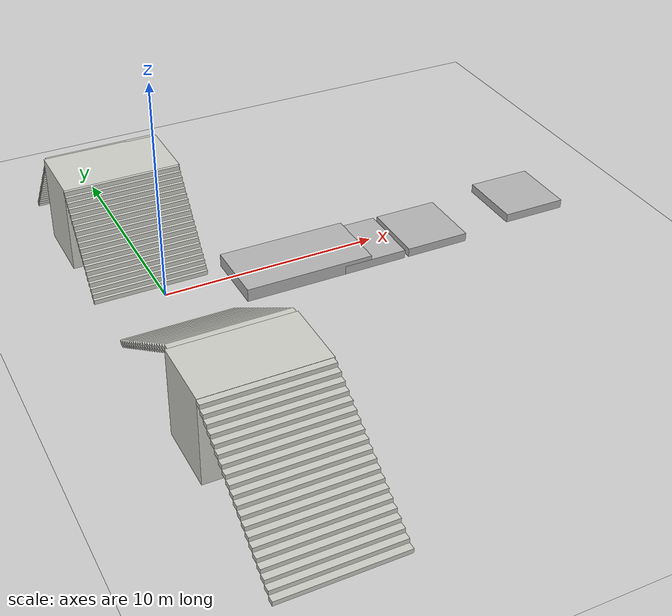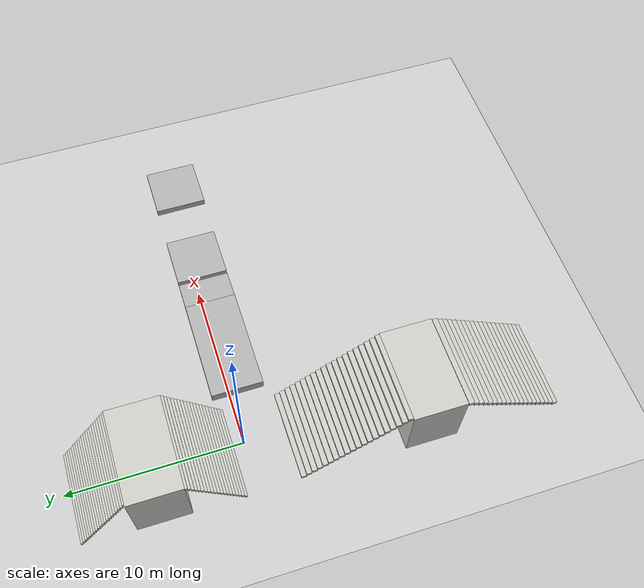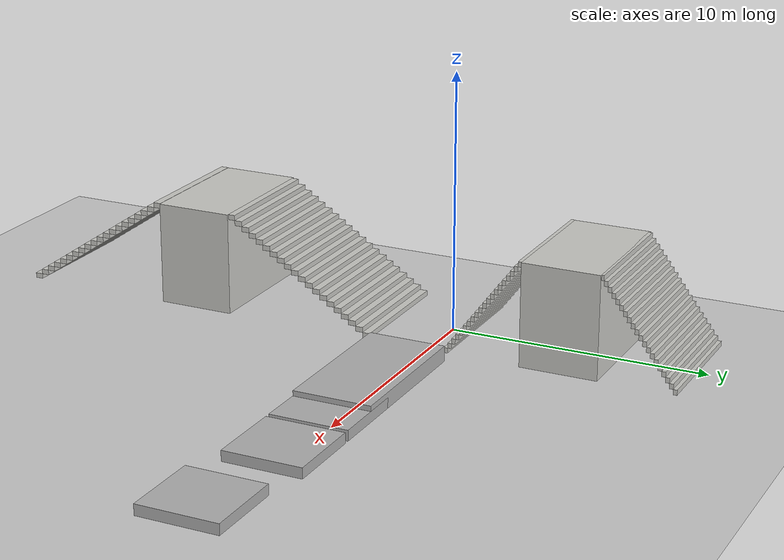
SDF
<sdf version="1.5">
 <world name="stairs_world">
  <include><uri>model://sun</uri></include>
  <include><uri>model://ground_plane</uri></include>
  <model name="stairs_20x30">
   <pose>0 -8 0 0 0 0</pose>
   <link name="Stairs_2">
    <pose>0 2.8 0 0 -0 0</pose>
    <visual name="Stairs_2_Visual_0">
     <pose>-0.312063 2.64146 0.1 0 -0 0</pose>
     <geometry><box><size>5.09 0.3 0.2</size></box></geometry>
     <material>
      <script><uri>file://media/materials/scripts/gazebo.material</uri><name>Gazebo/CeilingTiled</name></script>
      <ambient>0.996078 0.47451 0.0196078 1</ambient>
     </material>
     <meta><layer>0</layer></meta>
    </visual>
    <collision name="Stairs_2_Collision_0">
     <geometry><box><size>5.09 0.3 0.2</size></box></geometry>
     <pose>-0.312063 2.64146 0.1 0 -0 0</pose>
    </collision>
    <visual name="Stairs_2_Visual_1">
     <pose>-0.312063 2.34146 0.3 0 -0 0</pose>
     <geometry><box><size>5.09 0.3 0.2</size></box></geometry>
     <material>
      <script><uri>file://media/materials/scripts/gazebo.material</uri><name>Gazebo/CeilingTiled</name></script>
      <ambient>0.996078 0.47451 0.0196078 1</ambient>
     </material>
     <meta><layer>0</layer></meta>
    </visual>
    <collision name="Stairs_2_Collision_1">
     <geometry><box><size>5.09 0.3 0.2</size></box></geometry>
     <pose>-0.312063 2.34146 0.3 0 -0 0</pose>
    </collision>
    <visual name="Stairs_2_Visual_2">
     <pose>-0.312063 2.04146 0.5 0 -0 0</pose>
     <geometry><box><size>5.09 0.3 0.2</size></box></geometry>
     <material>
      <script><uri>file://media/materials/scripts/gazebo.material</uri><name>Gazebo/CeilingTiled</name></script>
      <ambient>0.996078 0.47451 0.0196078 1</ambient>
     </material>
     <meta><layer>0</layer></meta>
    </visual>
    <collision name="Stairs_2_Collision_2">
     <geometry><box><size>5.09 0.3 0.2</size></box></geometry>
     <pose>-0.312063 2.04146 0.5 0 -0 0</pose>
    </collision>
    <visual name="Stairs_2_Visual_3">
     <pose>-0.312063 1.74146 0.7 0 -0 0</pose>
     <geometry><box><size>5.09 0.3 0.2</size></box></geometry>
     <material>
      <script><uri>file://media/materials/scripts/gazebo.material</uri><name>Gazebo/CeilingTiled</name></script>
      <ambient>0.996078 0.47451 0.0196078 1</ambient>
     </material>
     <meta><layer>0</layer></meta>
    </visual>
    <collision name="Stairs_2_Collision_3">
     <geometry><box><size>5.09 0.3 0.2</size></box></geometry>
     <pose>-0.312063 1.74146 0.7 0 -0 0</pose>
    </collision>
    <visual name="Stairs_2_Visual_4">
     <pose>-0.312063 1.44146 0.9 0 -0 0</pose>
     <geometry><box><size>5.09 0.3 0.2</size></box></geometry>
     <material>
      <script><uri>file://media/materials/scripts/gazebo.material</uri><name>Gazebo/CeilingTiled</name></script>
      <ambient>0.996078 0.47451 0.0196078 1</ambient>
     </material>
     <meta><layer>0</layer></meta>
    </visual>
    <collision name="Stairs_2_Collision_4">
     <geometry><box><size>5.09 0.3 0.2</size></box></geometry>
     <pose>-0.312063 1.44146 0.9 0 -0 0</pose>
    </collision>
    <visual name="Stairs_2_Visual_5">
     <pose>-0.312063 1.14146 1.1 0 -0 0</pose>
     <geometry><box><size>5.09 0.3 0.2</size></box></geometry>
     <material>
      <script><uri>file://media/materials/scripts/gazebo.material</uri><name>Gazebo/CeilingTiled</name></script>
      <ambient>0.996078 0.47451 0.0196078 1</ambient>
     </material>
     <meta><layer>0</layer></meta>
    </visual>
    <collision name="Stairs_2_Collision_5">
     <geometry><box><size>5.09 0.3 0.2</size></box></geometry>
     <pose>-0.312063 1.14146 1.1 0 -0 0</pose>
    </collision>
    <visual name="Stairs_2_Visual_6">
     <pose>-0.312063 0.84146 1.3 0 -0 0</pose>
     <geometry><box><size>5.09 0.3 0.2</size></box></geometry>
     <material>
      <script><uri>file://media/materials/scripts/gazebo.material</uri><name>Gazebo/CeilingTiled</name></script>
      <ambient>0.996078 0.47451 0.0196078 1</ambient>
     </material>
     <meta><layer>0</layer></meta>
    </visual>
    <collision name="Stairs_2_Collision_6">
     <geometry><box><size>5.09 0.3 0.2</size></box></geometry>
     <pose>-0.312063 0.84146 1.3 0 -0 0</pose>
    </collision>
    <visual name="Stairs_2_Visual_7">
     <pose>-0.312063 0.54146 1.5 0 -0 0</pose>
     <geometry><box><size>5.09 0.3 0.2</size></box></geometry>
     <material>
      <script><uri>file://media/materials/scripts/gazebo.material</uri><name>Gazebo/CeilingTiled</name></script>
      <ambient>0.996078 0.47451 0.0196078 1</ambient>
     </material>
     <meta><layer>0</layer></meta>
    </visual>
    <collision name="Stairs_2_Collision_7">
     <geometry><box><size>5.09 0.3 0.2</size></box></geometry>
     <pose>-0.312063 0.54146 1.5 0 -0 0</pose>
    </collision>
    <visual name="Stairs_2_Visual_8">
     <pose>-0.312063 0.24146 1.7 0 -0 0</pose>
     <geometry><box><size>5.09 0.3 0.2</size></box></geometry>
     <material>
      <script><uri>file://media/materials/scripts/gazebo.material</uri><name>Gazebo/CeilingTiled</name></script>
      <ambient>0.996078 0.47451 0.0196078 1</ambient>
     </material>
     <meta><layer>0</layer></meta>
    </visual>
    <collision name="Stairs_2_Collision_8">
     <geometry><box><size>5.09 0.3 0.2</size></box></geometry>
     <pose>-0.312063 0.24146 1.7 0 -0 0</pose>
    </collision>
    <visual name="Stairs_2_Visual_9">
     <pose>-0.312063 -0.05854 1.9 0 -0 0</pose>
     <geometry><box><size>5.09 0.3 0.2</size></box></geometry>
     <material>
      <script><uri>file://media/materials/scripts/gazebo.material</uri><name>Gazebo/CeilingTiled</name></script>
      <ambient>0.996078 0.47451 0.0196078 1</ambient>
     </material>
     <meta><layer>0</layer></meta>
    </visual>
    <collision name="Stairs_2_Collision_9">
     <geometry><box><size>5.09 0.3 0.2</size></box></geometry>
     <pose>-0.312063 -0.05854 1.9 0 -0 0</pose>
    </collision>
    <visual name="Stairs_2_Visual_10">
     <pose>-0.312063 -0.35854 2.1 0 -0 0</pose>
     <geometry><box><size>5.09 0.3 0.2</size></box></geometry>
     <material>
      <script><uri>file://media/materials/scripts/gazebo.material</uri><name>Gazebo/CeilingTiled</name></script>
      <ambient>0.996078 0.47451 0.0196078 1</ambient>
     </material>
     <meta><layer>0</layer></meta>
    </visual>
    <collision name="Stairs_2_Collision_10">
     <geometry><box><size>5.09 0.3 0.2</size></box></geometry>
     <pose>-0.312063 -0.35854 2.1 0 -0 0</pose>
    </collision>
    <visual name="Stairs_2_Visual_11">
     <pose>-0.312063 -0.65854 2.3 0 -0 0</pose>
     <geometry><box><size>5.09 0.3 0.2</size></box></geometry>
     <material>
      <script><uri>file://media/materials/scripts/gazebo.material</uri><name>Gazebo/CeilingTiled</name></script>
      <ambient>0.996078 0.47451 0.0196078 1</ambient>
     </material>
     <meta><layer>0</layer></meta>
    </visual>
    <collision name="Stairs_2_Collision_11">
     <geometry><box><size>5.09 0.3 0.2</size></box></geometry>
     <pose>-0.312063 -0.65854 2.3 0 -0 0</pose>
    </collision>
    <visual name="Stairs_2_Visual_12">
     <pose>-0.312063 -0.95854 2.5 0 -0 0</pose>
     <geometry><box><size>5.09 0.3 0.2</size></box></geometry>
     <material>
      <script><uri>file://media/materials/scripts/gazebo.material</uri><name>Gazebo/CeilingTiled</name></script>
      <ambient>0.996078 0.47451 0.0196078 1</ambient>
     </material>
     <meta><layer>0</layer></meta>
    </visual>
    <collision name="Stairs_2_Collision_12">
     <geometry><box><size>5.09 0.3 0.2</size></box></geometry>
     <pose>-0.312063 -0.95854 2.5 0 -0 0</pose>
    </collision>
    <visual name="Stairs_2_Visual_13">
     <pose>-0.312063 -1.25854 2.7 0 -0 0</pose>
     <geometry><box><size>5.09 0.3 0.2</size></box></geometry>
     <material>
      <script><uri>file://media/materials/scripts/gazebo.material</uri><name>Gazebo/CeilingTiled</name></script>
      <ambient>0.996078 0.47451 0.0196078 1</ambient>
     </material>
     <meta><layer>0</layer></meta>
    </visual>
    <collision name="Stairs_2_Collision_13">
     <geometry><box><size>5.09 0.3 0.2</size></box></geometry>
     <pose>-0.312063 -1.25854 2.7 0 -0 0</pose>
    </collision>
    <visual name="Stairs_2_Visual_14">
     <pose>-0.312063 -1.55854 2.9 0 -0 0</pose>
     <geometry><box><size>5.09 0.3 0.2</size></box></geometry>
     <material>
      <script><uri>file://media/materials/scripts/gazebo.material</uri><name>Gazebo/CeilingTiled</name></script>
      <ambient>0.996078 0.47451 0.0196078 1</ambient>
     </material>
     <meta><layer>0</layer></meta>
    </visual>
    <collision name="Stairs_2_Collision_14">
     <geometry><box><size>5.09 0.3 0.2</size></box></geometry>
     <pose>-0.312063 -1.55854 2.9 0 -0 0</pose>
    </collision>
    <visual name="Stairs_2_Visual_15">
     <pose>-0.312063 -1.85854 3.1 0 -0 0</pose>
     <geometry><box><size>5.09 0.3 0.2</size></box></geometry>
     <material>
      <script><uri>file://media/materials/scripts/gazebo.material</uri><name>Gazebo/CeilingTiled</name></script>
      <ambient>0.996078 0.47451 0.0196078 1</ambient>
     </material>
     <meta><layer>0</layer></meta>
    </visual>
    <collision name="Stairs_2_Collision_15">
     <geometry><box><size>5.09 0.3 0.2</size></box></geometry>
     <pose>-0.312063 -1.85854 3.1 0 -0 0</pose>
    </collision>
    <visual name="Stairs_2_Visual_16">
     <pose>-0.312063 -2.15854 3.3 0 -0 0</pose>
     <geometry><box><size>5.09 0.3 0.2</size></box></geometry>
     <material>
      <script><uri>file://media/materials/scripts/gazebo.material</uri><name>Gazebo/CeilingTiled</name></script>
      <ambient>0.996078 0.47451 0.0196078 1</ambient>
     </material>
     <meta><layer>0</layer></meta>
    </visual>
    <collision name="Stairs_2_Collision_16">
     <geometry><box><size>5.09 0.3 0.2</size></box></geometry>
     <pose>-0.312063 -2.15854 3.3 0 -0 0</pose>
    </collision>
    <visual name="Stairs_2_Visual_17">
     <pose>-0.312063 -2.45854 3.5 0 -0 0</pose>
     <geometry><box><size>5.09 0.3 0.2</size></box></geometry>
     <material>
      <script><uri>file://media/materials/scripts/gazebo.material</uri><name>Gazebo/CeilingTiled</name></script>
      <ambient>0.996078 0.47451 0.0196078 1</ambient>
     </material>
     <meta><layer>0</layer></meta>
    </visual>
    <collision name="Stairs_2_Collision_17">
     <geometry><box><size>5.09 0.3 0.2</size></box></geometry>
     <pose>-0.312063 -2.45854 3.5 0 -0 0</pose>
    </collision>
    <visual name="Stairs_2_Visual_18">
     <pose>-0.312063 -2.75854 3.7 0 -0 0</pose>
     <geometry><box><size>5.09 0.3 0.2</size></box></geometry>
     <material>
      <script><uri>file://media/materials/scripts/gazebo.material</uri><name>Gazebo/CeilingTiled</name></script>
      <ambient>0.996078 0.47451 0.0196078 1</ambient>
     </material>
     <meta><layer>0</layer></meta>
    </visual>
    <collision name="Stairs_2_Collision_18">
     <geometry><box><size>5.09 0.3 0.2</size></box></geometry>
     <pose>-0.312063 -2.75854 3.7 0 -0 0</pose>
    </collision>
    <visual name="Stairs_2_Visual_19">
     <pose>-0.312063 -3.05854 3.9 0 -0 0</pose>
     <geometry><box><size>5.09 0.3 0.2</size></box></geometry>
     <material>
      <script><uri>file://media/materials/scripts/gazebo.material</uri><name>Gazebo/CeilingTiled</name></script>
      <ambient>0.996078 0.47451 0.0196078 1</ambient>
     </material>
     <meta><layer>0</layer></meta>
    </visual>
    <collision name="Stairs_2_Collision_19">
     <geometry><box><size>5.09 0.3 0.2</size></box></geometry>
     <pose>-0.312063 -3.05854 3.9 0 -0 0</pose>
    </collision>
   </link>
   <link name="Stairs_4">
    <pose>0 -2.8 0 0 -0 0</pose>
    <visual name="Stairs_4_Visual_0">
     <pose>-0.367728 -6.44772 0.1 0 -0 -3.14159</pose>
     <geometry><box><size>5.21 0.3 0.2</size></box></geometry>
     <material>
      <script><uri>file://media/materials/scripts/gazebo.material</uri><name>Gazebo/CeilingTiled</name></script>
      <ambient>0.996078 0.47451 0.0196078 1</ambient>
     </material>
     <meta><layer>0</layer></meta>
    </visual>
    <collision name="Stairs_4_Collision_0">
     <geometry><box><size>5.21 0.3 0.2</size></box></geometry>
     <pose>-0.367728 -6.44772 0.1 0 -0 -3.14159</pose>
    </collision>
    <visual name="Stairs_4_Visual_1">
     <pose>-0.367728 -6.14772 0.3 0 -0 -3.14159</pose>
     <geometry><box><size>5.21 0.3 0.2</size></box></geometry>
     <material>
      <script><uri>file://media/materials/scripts/gazebo.material</uri><name>Gazebo/CeilingTiled</name></script>
      <ambient>0.996078 0.47451 0.0196078 1</ambient>
     </material>
     <meta><layer>0</layer></meta>
    </visual>
    <collision name="Stairs_4_Collision_1">
     <geometry><box><size>5.21 0.3 0.2</size></box></geometry>
     <pose>-0.367728 -6.14772 0.3 0 -0 -3.14159</pose>
    </collision>
    <visual name="Stairs_4_Visual_2">
     <pose>-0.367728 -5.84772 0.5 0 -0 -3.14159</pose>
     <geometry><box><size>5.21 0.3 0.2</size></box></geometry>
     <material>
      <script><uri>file://media/materials/scripts/gazebo.material</uri><name>Gazebo/CeilingTiled</name></script>
      <ambient>0.996078 0.47451 0.0196078 1</ambient>
     </material>
     <meta><layer>0</layer></meta>
    </visual>
    <collision name="Stairs_4_Collision_2">
     <geometry><box><size>5.21 0.3 0.2</size></box></geometry>
     <pose>-0.367728 -5.84772 0.5 0 -0 -3.14159</pose>
    </collision>
    <visual name="Stairs_4_Visual_3">
     <pose>-0.367728 -5.54772 0.7 0 -0 -3.14159</pose>
     <geometry><box><size>5.21 0.3 0.2</size></box></geometry>
     <material>
      <script><uri>file://media/materials/scripts/gazebo.material</uri><name>Gazebo/CeilingTiled</name></script>
      <ambient>0.996078 0.47451 0.0196078 1</ambient>
     </material>
     <meta><layer>0</layer></meta>
    </visual>
    <collision name="Stairs_4_Collision_3">
     <geometry><box><size>5.21 0.3 0.2</size></box></geometry>
     <pose>-0.367728 -5.54772 0.7 0 -0 -3.14159</pose>
    </collision>
    <visual name="Stairs_4_Visual_4">
     <pose>-0.367728 -5.24772 0.9 0 -0 -3.14159</pose>
     <geometry><box><size>5.21 0.3 0.2</size></box></geometry>
     <material>
      <script><uri>file://media/materials/scripts/gazebo.material</uri><name>Gazebo/CeilingTiled</name></script>
      <ambient>0.996078 0.47451 0.0196078 1</ambient>
     </material>
     <meta><layer>0</layer></meta>
    </visual>
    <collision name="Stairs_4_Collision_4">
     <geometry><box><size>5.21 0.3 0.2</size></box></geometry>
     <pose>-0.367728 -5.24772 0.9 0 -0 -3.14159</pose>
    </collision>
    <visual name="Stairs_4_Visual_5">
     <pose>-0.367728 -4.94772 1.1 0 -0 -3.14159</pose>
     <geometry><box><size>5.21 0.3 0.2</size></box></geometry>
     <material>
      <script><uri>file://media/materials/scripts/gazebo.material</uri><name>Gazebo/CeilingTiled</name></script>
      <ambient>0.996078 0.47451 0.0196078 1</ambient>
     </material>
     <meta><layer>0</layer></meta>
    </visual>
    <collision name="Stairs_4_Collision_5">
     <geometry><box><size>5.21 0.3 0.2</size></box></geometry>
     <pose>-0.367728 -4.94772 1.1 0 -0 -3.14159</pose>
    </collision>
    <visual name="Stairs_4_Visual_6">
     <pose>-0.367728 -4.64772 1.3 0 -0 -3.14159</pose>
     <geometry><box><size>5.21 0.3 0.2</size></box></geometry>
     <material>
      <script><uri>file://media/materials/scripts/gazebo.material</uri><name>Gazebo/CeilingTiled</name></script>
      <ambient>0.996078 0.47451 0.0196078 1</ambient>
     </material>
     <meta><layer>0</layer></meta>
    </visual>
    <collision name="Stairs_4_Collision_6">
     <geometry><box><size>5.21 0.3 0.2</size></box></geometry>
     <pose>-0.367728 -4.64772 1.3 0 -0 -3.14159</pose>
    </collision>
    <visual name="Stairs_4_Visual_7">
     <pose>-0.367728 -4.34772 1.5 0 -0 -3.14159</pose>
     <geometry><box><size>5.21 0.3 0.2</size></box></geometry>
     <material>
      <script><uri>file://media/materials/scripts/gazebo.material</uri><name>Gazebo/CeilingTiled</name></script>
      <ambient>0.996078 0.47451 0.0196078 1</ambient>
     </material>
     <meta><layer>0</layer></meta>
    </visual>
    <collision name="Stairs_4_Collision_7">
     <geometry><box><size>5.21 0.3 0.2</size></box></geometry>
     <pose>-0.367728 -4.34772 1.5 0 -0 -3.14159</pose>
    </collision>
    <visual name="Stairs_4_Visual_8">
     <pose>-0.367728 -4.04772 1.7 0 -0 -3.14159</pose>
     <geometry><box><size>5.21 0.3 0.2</size></box></geometry>
     <material>
      <script><uri>file://media/materials/scripts/gazebo.material</uri><name>Gazebo/CeilingTiled</name></script>
      <ambient>0.996078 0.47451 0.0196078 1</ambient>
     </material>
     <meta><layer>0</layer></meta>
    </visual>
    <collision name="Stairs_4_Collision_8">
     <geometry><box><size>5.21 0.3 0.2</size></box></geometry>
     <pose>-0.367728 -4.04772 1.7 0 -0 -3.14159</pose>
    </collision>
    <visual name="Stairs_4_Visual_9">
     <pose>-0.367728 -3.74772 1.9 0 -0 -3.14159</pose>
     <geometry><box><size>5.21 0.3 0.2</size></box></geometry>
     <material>
      <script><uri>file://media/materials/scripts/gazebo.material</uri><name>Gazebo/CeilingTiled</name></script>
      <ambient>0.996078 0.47451 0.0196078 1</ambient>
     </material>
     <meta><layer>0</layer></meta>
    </visual>
    <collision name="Stairs_4_Collision_9">
     <geometry><box><size>5.21 0.3 0.2</size></box></geometry>
     <pose>-0.367728 -3.74772 1.9 0 -0 -3.14159</pose>
    </collision>
    <visual name="Stairs_4_Visual_10">
     <pose>-0.367728 -3.44772 2.1 0 -0 -3.14159</pose>
     <geometry><box><size>5.21 0.3 0.2</size></box></geometry>
     <material>
      <script><uri>file://media/materials/scripts/gazebo.material</uri><name>Gazebo/CeilingTiled</name></script>
      <ambient>0.996078 0.47451 0.0196078 1</ambient>
     </material>
     <meta><layer>0</layer></meta>
    </visual>
    <collision name="Stairs_4_Collision_10">
     <geometry><box><size>5.21 0.3 0.2</size></box></geometry>
     <pose>-0.367728 -3.44772 2.1 0 -0 -3.14159</pose>
    </collision>
    <visual name="Stairs_4_Visual_11">
     <pose>-0.367728 -3.14772 2.3 0 -0 -3.14159</pose>
     <geometry><box><size>5.21 0.3 0.2</size></box></geometry>
     <material>
      <script><uri>file://media/materials/scripts/gazebo.material</uri><name>Gazebo/CeilingTiled</name></script>
      <ambient>0.996078 0.47451 0.0196078 1</ambient>
     </material>
     <meta><layer>0</layer></meta>
    </visual>
    <collision name="Stairs_4_Collision_11">
     <geometry><box><size>5.21 0.3 0.2</size></box></geometry>
     <pose>-0.367728 -3.14772 2.3 0 -0 -3.14159</pose>
    </collision>
    <visual name="Stairs_4_Visual_12">
     <pose>-0.367728 -2.84772 2.5 0 -0 -3.14159</pose>
     <geometry><box><size>5.21 0.3 0.2</size></box></geometry>
     <material>
      <script><uri>file://media/materials/scripts/gazebo.material</uri><name>Gazebo/CeilingTiled</name></script>
      <ambient>0.996078 0.47451 0.0196078 1</ambient>
     </material>
     <meta><layer>0</layer></meta>
    </visual>
    <collision name="Stairs_4_Collision_12">
     <geometry><box><size>5.21 0.3 0.2</size></box></geometry>
     <pose>-0.367728 -2.84772 2.5 0 -0 -3.14159</pose>
    </collision>
    <visual name="Stairs_4_Visual_13">
     <pose>-0.367728 -2.54772 2.7 0 -0 -3.14159</pose>
     <geometry><box><size>5.21 0.3 0.2</size></box></geometry>
     <material>
      <script><uri>file://media/materials/scripts/gazebo.material</uri><name>Gazebo/CeilingTiled</name></script>
      <ambient>0.996078 0.47451 0.0196078 1</ambient>
     </material>
     <meta><layer>0</layer></meta>
    </visual>
    <collision name="Stairs_4_Collision_13">
     <geometry><box><size>5.21 0.3 0.2</size></box></geometry>
     <pose>-0.367728 -2.54772 2.7 0 -0 -3.14159</pose>
    </collision>
    <visual name="Stairs_4_Visual_14">
     <pose>-0.367728 -2.24772 2.9 0 -0 -3.14159</pose>
     <geometry><box><size>5.21 0.3 0.2</size></box></geometry>
     <material>
      <script><uri>file://media/materials/scripts/gazebo.material</uri><name>Gazebo/CeilingTiled</name></script>
      <ambient>0.996078 0.47451 0.0196078 1</ambient>
     </material>
     <meta><layer>0</layer></meta>
    </visual>
    <collision name="Stairs_4_Collision_14">
     <geometry><box><size>5.21 0.3 0.2</size></box></geometry>
     <pose>-0.367728 -2.24772 2.9 0 -0 -3.14159</pose>
    </collision>
    <visual name="Stairs_4_Visual_15">
     <pose>-0.367728 -1.94772 3.1 0 -0 -3.14159</pose>
     <geometry><box><size>5.21 0.3 0.2</size></box></geometry>
     <material>
      <script><uri>file://media/materials/scripts/gazebo.material</uri><name>Gazebo/CeilingTiled</name></script>
      <ambient>0.996078 0.47451 0.0196078 1</ambient>
     </material>
     <meta><layer>0</layer></meta>
    </visual>
    <collision name="Stairs_4_Collision_15">
     <geometry><box><size>5.21 0.3 0.2</size></box></geometry>
     <pose>-0.367728 -1.94772 3.1 0 -0 -3.14159</pose>
    </collision>
    <visual name="Stairs_4_Visual_16">
     <pose>-0.367728 -1.64772 3.3 0 -0 -3.14159</pose>
     <geometry><box><size>5.21 0.3 0.2</size></box></geometry>
     <material>
      <script><uri>file://media/materials/scripts/gazebo.material</uri><name>Gazebo/CeilingTiled</name></script>
      <ambient>0.996078 0.47451 0.0196078 1</ambient>
     </material>
     <meta><layer>0</layer></meta>
    </visual>
    <collision name="Stairs_4_Collision_16">
     <geometry><box><size>5.21 0.3 0.2</size></box></geometry>
     <pose>-0.367728 -1.64772 3.3 0 -0 -3.14159</pose>
    </collision>
    <visual name="Stairs_4_Visual_17">
     <pose>-0.367728 -1.34772 3.5 0 -0 -3.14159</pose>
     <geometry><box><size>5.21 0.3 0.2</size></box></geometry>
     <material>
      <script><uri>file://media/materials/scripts/gazebo.material</uri><name>Gazebo/CeilingTiled</name></script>
      <ambient>0.996078 0.47451 0.0196078 1</ambient>
     </material>
     <meta><layer>0</layer></meta>
    </visual>
    <collision name="Stairs_4_Collision_17">
     <geometry><box><size>5.21 0.3 0.2</size></box></geometry>
     <pose>-0.367728 -1.34772 3.5 0 -0 -3.14159</pose>
    </collision>
    <visual name="Stairs_4_Visual_18">
     <pose>-0.367728 -1.04772 3.7 0 -0 -3.14159</pose>
     <geometry><box><size>5.21 0.3 0.2</size></box></geometry>
     <material>
      <script><uri>file://media/materials/scripts/gazebo.material</uri><name>Gazebo/CeilingTiled</name></script>
      <ambient>0.996078 0.47451 0.0196078 1</ambient>
     </material>
     <meta><layer>0</layer></meta>
    </visual>
    <collision name="Stairs_4_Collision_18">
     <geometry><box><size>5.21 0.3 0.2</size></box></geometry>
     <pose>-0.367728 -1.04772 3.7 0 -0 -3.14159</pose>
    </collision>
    <visual name="Stairs_4_Visual_19">
     <pose>-0.367728 -0.74772 3.9 0 -0 -3.14159</pose>
     <geometry><box><size>5.21 0.3 0.2</size></box></geometry>
     <material>
      <script><uri>file://media/materials/scripts/gazebo.material</uri><name>Gazebo/CeilingTiled</name></script>
      <ambient>0.996078 0.47451 0.0196078 1</ambient>
     </material>
     <meta><layer>0</layer></meta>
    </visual>
    <collision name="Stairs_4_Collision_19">
     <geometry><box><size>5.21 0.3 0.2</size></box></geometry>
     <pose>-0.367728 -0.74772 3.9 0 -0 -3.14159</pose>
    </collision>
   </link>
   <link name="Wall_0">
    <collision name="Wall_0_Collision">
     <geometry><box><size>5.25 3 4</size></box></geometry>
     <pose>0 0 2 0 -0 0</pose>
    </collision>
    <visual name="Wall_0_Visual">
     <pose>0 0 2 0 -0 0</pose>
     <geometry><box><size>5.25 3 4</size></box></geometry>
     <material>
      <script><uri>file://media/materials/scripts/gazebo.material</uri><name>Gazebo/CeilingTiled</name></script>
      <ambient>0.760784 0.662745 0.627451 1</ambient>
     </material>
     <meta><layer>0</layer></meta>
    </visual>
    <pose>-0.327481 -1.88249 0 0 -0 0</pose>
   </link>
   <static>1</static>
  </model>
  <model name="stairs_20x15">
   <pose>0 7 0 0 0 0</pose>
   <link name="Stairs_2">
    <pose>0 -0.15 0 0 -0 0</pose>
    <visual name="Stairs_2_Visual_0">
     <pose>-0.312063 2.64146 0.1 0 -0 0</pose>
     <geometry><box><size>5.09 0.15 0.2</size></box></geometry>
     <material>
      <script><uri>file://media/materials/scripts/gazebo.material</uri><name>Gazebo/CeilingTiled</name></script>
      <ambient>0.996078 0.47451 0.0196078 1</ambient>
     </material>
     <meta><layer>0</layer></meta>
    </visual>
    <collision name="Stairs_2_Collision_0">
     <geometry><box><size>5.09 0.15 0.2</size></box></geometry>
     <pose>-0.312063 2.64146 0.1 0 -0 0</pose>
    </collision>
    <visual name="Stairs_2_Visual_1">
     <pose>-0.312063 2.49146 0.3 0 -0 0</pose>
     <geometry><box><size>5.09 0.15 0.2</size></box></geometry>
     <material>
      <script><uri>file://media/materials/scripts/gazebo.material</uri><name>Gazebo/CeilingTiled</name></script>
      <ambient>0.996078 0.47451 0.0196078 1</ambient>
     </material>
     <meta><layer>0</layer></meta>
    </visual>
    <collision name="Stairs_2_Collision_1">
     <geometry><box><size>5.09 0.15 0.2</size></box></geometry>
     <pose>-0.312063 2.49146 0.3 0 -0 0</pose>
    </collision>
    <visual name="Stairs_2_Visual_2">
     <pose>-0.312063 2.34146 0.5 0 -0 0</pose>
     <geometry><box><size>5.09 0.15 0.2</size></box></geometry>
     <material>
      <script><uri>file://media/materials/scripts/gazebo.material</uri><name>Gazebo/CeilingTiled</name></script>
      <ambient>0.996078 0.47451 0.0196078 1</ambient>
     </material>
     <meta><layer>0</layer></meta>
    </visual>
    <collision name="Stairs_2_Collision_2">
     <geometry><box><size>5.09 0.15 0.2</size></box></geometry>
     <pose>-0.312063 2.34146 0.5 0 -0 0</pose>
    </collision>
    <visual name="Stairs_2_Visual_3">
     <pose>-0.312063 2.19146 0.7 0 -0 0</pose>
     <geometry><box><size>5.09 0.15 0.2</size></box></geometry>
     <material>
      <script><uri>file://media/materials/scripts/gazebo.material</uri><name>Gazebo/CeilingTiled</name></script>
      <ambient>0.996078 0.47451 0.0196078 1</ambient>
     </material>
     <meta><layer>0</layer></meta>
    </visual>
    <collision name="Stairs_2_Collision_3">
     <geometry><box><size>5.09 0.15 0.2</size></box></geometry>
     <pose>-0.312063 2.19146 0.7 0 -0 0</pose>
    </collision>
    <visual name="Stairs_2_Visual_4">
     <pose>-0.312063 2.04146 0.9 0 -0 0</pose>
     <geometry><box><size>5.09 0.15 0.2</size></box></geometry>
     <material>
      <script><uri>file://media/materials/scripts/gazebo.material</uri><name>Gazebo/CeilingTiled</name></script>
      <ambient>0.996078 0.47451 0.0196078 1</ambient>
     </material>
     <meta><layer>0</layer></meta>
    </visual>
    <collision name="Stairs_2_Collision_4">
     <geometry><box><size>5.09 0.15 0.2</size></box></geometry>
     <pose>-0.312063 2.04146 0.9 0 -0 0</pose>
    </collision>
    <visual name="Stairs_2_Visual_5">
     <pose>-0.312063 1.89146 1.1 0 -0 0</pose>
     <geometry><box><size>5.09 0.15 0.2</size></box></geometry>
     <material>
      <script><uri>file://media/materials/scripts/gazebo.material</uri><name>Gazebo/CeilingTiled</name></script>
      <ambient>0.996078 0.47451 0.0196078 1</ambient>
     </material>
     <meta><layer>0</layer></meta>
    </visual>
    <collision name="Stairs_2_Collision_5">
     <geometry><box><size>5.09 0.15 0.2</size></box></geometry>
     <pose>-0.312063 1.89146 1.1 0 -0 0</pose>
    </collision>
    <visual name="Stairs_2_Visual_6">
     <pose>-0.312063 1.74146 1.3 0 -0 0</pose>
     <geometry><box><size>5.09 0.15 0.2</size></box></geometry>
     <material>
      <script><uri>file://media/materials/scripts/gazebo.material</uri><name>Gazebo/CeilingTiled</name></script>
      <ambient>0.996078 0.47451 0.0196078 1</ambient>
     </material>
     <meta><layer>0</layer></meta>
    </visual>
    <collision name="Stairs_2_Collision_6">
     <geometry><box><size>5.09 0.15 0.2</size></box></geometry>
     <pose>-0.312063 1.74146 1.3 0 -0 0</pose>
    </collision>
    <visual name="Stairs_2_Visual_7">
     <pose>-0.312063 1.59146 1.5 0 -0 0</pose>
     <geometry><box><size>5.09 0.15 0.2</size></box></geometry>
     <material>
      <script><uri>file://media/materials/scripts/gazebo.material</uri><name>Gazebo/CeilingTiled</name></script>
      <ambient>0.996078 0.47451 0.0196078 1</ambient>
     </material>
     <meta><layer>0</layer></meta>
    </visual>
    <collision name="Stairs_2_Collision_7">
     <geometry><box><size>5.09 0.15 0.2</size></box></geometry>
     <pose>-0.312063 1.59146 1.5 0 -0 0</pose>
    </collision>
    <visual name="Stairs_2_Visual_8">
     <pose>-0.312063 1.44146 1.7 0 -0 0</pose>
     <geometry><box><size>5.09 0.15 0.2</size></box></geometry>
     <material>
      <script><uri>file://media/materials/scripts/gazebo.material</uri><name>Gazebo/CeilingTiled</name></script>
      <ambient>0.996078 0.47451 0.0196078 1</ambient>
     </material>
     <meta><layer>0</layer></meta>
    </visual>
    <collision name="Stairs_2_Collision_8">
     <geometry><box><size>5.09 0.15 0.2</size></box></geometry>
     <pose>-0.312063 1.44146 1.7 0 -0 0</pose>
    </collision>
    <visual name="Stairs_2_Visual_9">
     <pose>-0.312063 1.29146 1.9 0 -0 0</pose>
     <geometry><box><size>5.09 0.15 0.2</size></box></geometry>
     <material>
      <script><uri>file://media/materials/scripts/gazebo.material</uri><name>Gazebo/CeilingTiled</name></script>
      <ambient>0.996078 0.47451 0.0196078 1</ambient>
     </material>
     <meta><layer>0</layer></meta>
    </visual>
    <collision name="Stairs_2_Collision_9">
     <geometry><box><size>5.09 0.15 0.2</size></box></geometry>
     <pose>-0.312063 1.29146 1.9 0 -0 0</pose>
    </collision>
    <visual name="Stairs_2_Visual_10">
     <pose>-0.312063 1.14146 2.1 0 -0 0</pose>
     <geometry><box><size>5.09 0.15 0.2</size></box></geometry>
     <material>
      <script><uri>file://media/materials/scripts/gazebo.material</uri><name>Gazebo/CeilingTiled</name></script>
      <ambient>0.996078 0.47451 0.0196078 1</ambient>
     </material>
     <meta><layer>0</layer></meta>
    </visual>
    <collision name="Stairs_2_Collision_10">
     <geometry><box><size>5.09 0.15 0.2</size></box></geometry>
     <pose>-0.312063 1.14146 2.1 0 -0 0</pose>
    </collision>
    <visual name="Stairs_2_Visual_11">
     <pose>-0.312063 0.99146 2.3 0 -0 0</pose>
     <geometry><box><size>5.09 0.15 0.2</size></box></geometry>
     <material>
      <script><uri>file://media/materials/scripts/gazebo.material</uri><name>Gazebo/CeilingTiled</name></script>
      <ambient>0.996078 0.47451 0.0196078 1</ambient>
     </material>
     <meta><layer>0</layer></meta>
    </visual>
    <collision name="Stairs_2_Collision_11">
     <geometry><box><size>5.09 0.15 0.2</size></box></geometry>
     <pose>-0.312063 0.99146 2.3 0 -0 0</pose>
    </collision>
    <visual name="Stairs_2_Visual_12">
     <pose>-0.312063 0.84146 2.5 0 -0 0</pose>
     <geometry><box><size>5.09 0.15 0.2</size></box></geometry>
     <material>
      <script><uri>file://media/materials/scripts/gazebo.material</uri><name>Gazebo/CeilingTiled</name></script>
      <ambient>0.996078 0.47451 0.0196078 1</ambient>
     </material>
     <meta><layer>0</layer></meta>
    </visual>
    <collision name="Stairs_2_Collision_12">
     <geometry><box><size>5.09 0.15 0.2</size></box></geometry>
     <pose>-0.312063 0.84146 2.5 0 -0 0</pose>
    </collision>
    <visual name="Stairs_2_Visual_13">
     <pose>-0.312063 0.69146 2.7 0 -0 0</pose>
     <geometry><box><size>5.09 0.15 0.2</size></box></geometry>
     <material>
      <script><uri>file://media/materials/scripts/gazebo.material</uri><name>Gazebo/CeilingTiled</name></script>
      <ambient>0.996078 0.47451 0.0196078 1</ambient>
     </material>
     <meta><layer>0</layer></meta>
    </visual>
    <collision name="Stairs_2_Collision_13">
     <geometry><box><size>5.09 0.15 0.2</size></box></geometry>
     <pose>-0.312063 0.69146 2.7 0 -0 0</pose>
    </collision>
    <visual name="Stairs_2_Visual_14">
     <pose>-0.312063 0.54146 2.9 0 -0 0</pose>
     <geometry><box><size>5.09 0.15 0.2</size></box></geometry>
     <material>
      <script><uri>file://media/materials/scripts/gazebo.material</uri><name>Gazebo/CeilingTiled</name></script>
      <ambient>0.996078 0.47451 0.0196078 1</ambient>
     </material>
     <meta><layer>0</layer></meta>
    </visual>
    <collision name="Stairs_2_Collision_14">
     <geometry><box><size>5.09 0.15 0.2</size></box></geometry>
     <pose>-0.312063 0.54146 2.9 0 -0 0</pose>
    </collision>
    <visual name="Stairs_2_Visual_15">
     <pose>-0.312063 0.391459 3.1 0 -0 0</pose>
     <geometry><box><size>5.09 0.15 0.2</size></box></geometry>
     <material>
      <script><uri>file://media/materials/scripts/gazebo.material</uri><name>Gazebo/CeilingTiled</name></script>
      <ambient>0.996078 0.47451 0.0196078 1</ambient>
     </material>
     <meta><layer>0</layer></meta>
    </visual>
    <collision name="Stairs_2_Collision_15">
     <geometry><box><size>5.09 0.15 0.2</size></box></geometry>
     <pose>-0.312063 0.391459 3.1 0 -0 0</pose>
    </collision>
    <visual name="Stairs_2_Visual_16">
     <pose>-0.312063 0.24146 3.3 0 -0 0</pose>
     <geometry><box><size>5.09 0.15 0.2</size></box></geometry>
     <material>
      <script><uri>file://media/materials/scripts/gazebo.material</uri><name>Gazebo/CeilingTiled</name></script>
      <ambient>0.996078 0.47451 0.0196078 1</ambient>
     </material>
     <meta><layer>0</layer></meta>
    </visual>
    <collision name="Stairs_2_Collision_16">
     <geometry><box><size>5.09 0.15 0.2</size></box></geometry>
     <pose>-0.312063 0.24146 3.3 0 -0 0</pose>
    </collision>
    <visual name="Stairs_2_Visual_17">
     <pose>-0.312063 0.09146 3.5 0 -0 0</pose>
     <geometry><box><size>5.09 0.15 0.2</size></box></geometry>
     <material>
      <script><uri>file://media/materials/scripts/gazebo.material</uri><name>Gazebo/CeilingTiled</name></script>
      <ambient>0.996078 0.47451 0.0196078 1</ambient>
     </material>
     <meta><layer>0</layer></meta>
    </visual>
    <collision name="Stairs_2_Collision_17">
     <geometry><box><size>5.09 0.15 0.2</size></box></geometry>
     <pose>-0.312063 0.09146 3.5 0 -0 0</pose>
    </collision>
    <visual name="Stairs_2_Visual_18">
     <pose>-0.312063 -0.05854 3.7 0 -0 0</pose>
     <geometry><box><size>5.09 0.15 0.2</size></box></geometry>
     <material>
      <script><uri>file://media/materials/scripts/gazebo.material</uri><name>Gazebo/CeilingTiled</name></script>
      <ambient>0.996078 0.47451 0.0196078 1</ambient>
     </material>
     <meta><layer>0</layer></meta>
    </visual>
    <collision name="Stairs_2_Collision_18">
     <geometry><box><size>5.09 0.15 0.2</size></box></geometry>
     <pose>-0.312063 -0.05854 3.7 0 -0 0</pose>
    </collision>
    <visual name="Stairs_2_Visual_19">
     <pose>-0.312063 -0.20854 3.9 0 -0 0</pose>
     <geometry><box><size>5.09 0.15 0.2</size></box></geometry>
     <material>
      <script><uri>file://media/materials/scripts/gazebo.material</uri><name>Gazebo/CeilingTiled</name></script>
      <ambient>0.996078 0.47451 0.0196078 1</ambient>
     </material>
     <meta><layer>0</layer></meta>
    </visual>
    <collision name="Stairs_2_Collision_19">
     <geometry><box><size>5.09 0.15 0.2</size></box></geometry>
     <pose>-0.312063 -0.20854 3.9 0 -0 0</pose>
    </collision>
   </link>
   <link name="Stairs_4">
    <pose>0 0.15 0 0 -0 0</pose>
    <visual name="Stairs_4_Visual_0">
     <pose>-0.367728 -6.44772 0.1 0 -0 -3.14159</pose>
     <geometry><box><size>5.21 0.15 0.2</size></box></geometry>
     <material>
      <script><uri>file://media/materials/scripts/gazebo.material</uri><name>Gazebo/CeilingTiled</name></script>
      <ambient>0.996078 0.47451 0.0196078 1</ambient>
     </material>
     <meta><layer>0</layer></meta>
    </visual>
    <collision name="Stairs_4_Collision_0">
     <geometry><box><size>5.21 0.15 0.2</size></box></geometry>
     <pose>-0.367728 -6.44772 0.1 0 -0 -3.14159</pose>
    </collision>
    <visual name="Stairs_4_Visual_1">
     <pose>-0.367728 -6.29772 0.3 0 -0 -3.14159</pose>
     <geometry><box><size>5.21 0.15 0.2</size></box></geometry>
     <material>
      <script><uri>file://media/materials/scripts/gazebo.material</uri><name>Gazebo/CeilingTiled</name></script>
      <ambient>0.996078 0.47451 0.0196078 1</ambient>
     </material>
     <meta><layer>0</layer></meta>
    </visual>
    <collision name="Stairs_4_Collision_1">
     <geometry><box><size>5.21 0.15 0.2</size></box></geometry>
     <pose>-0.367728 -6.29772 0.3 0 -0 -3.14159</pose>
    </collision>
    <visual name="Stairs_4_Visual_2">
     <pose>-0.367728 -6.14772 0.5 0 -0 -3.14159</pose>
     <geometry><box><size>5.21 0.15 0.2</size></box></geometry>
     <material>
      <script><uri>file://media/materials/scripts/gazebo.material</uri><name>Gazebo/CeilingTiled</name></script>
      <ambient>0.996078 0.47451 0.0196078 1</ambient>
     </material>
     <meta><layer>0</layer></meta>
    </visual>
    <collision name="Stairs_4_Collision_2">
     <geometry><box><size>5.21 0.15 0.2</size></box></geometry>
     <pose>-0.367728 -6.14772 0.5 0 -0 -3.14159</pose>
    </collision>
    <visual name="Stairs_4_Visual_3">
     <pose>-0.367728 -5.99772 0.7 0 -0 -3.14159</pose>
     <geometry><box><size>5.21 0.15 0.2</size></box></geometry>
     <material>
      <script><uri>file://media/materials/scripts/gazebo.material</uri><name>Gazebo/CeilingTiled</name></script>
      <ambient>0.996078 0.47451 0.0196078 1</ambient>
     </material>
     <meta><layer>0</layer></meta>
    </visual>
    <collision name="Stairs_4_Collision_3">
     <geometry><box><size>5.21 0.15 0.2</size></box></geometry>
     <pose>-0.367728 -5.99772 0.7 0 -0 -3.14159</pose>
    </collision>
    <visual name="Stairs_4_Visual_4">
     <pose>-0.367728 -5.84772 0.9 0 -0 -3.14159</pose>
     <geometry><box><size>5.21 0.15 0.2</size></box></geometry>
     <material>
      <script><uri>file://media/materials/scripts/gazebo.material</uri><name>Gazebo/CeilingTiled</name></script>
      <ambient>0.996078 0.47451 0.0196078 1</ambient>
     </material>
     <meta><layer>0</layer></meta>
    </visual>
    <collision name="Stairs_4_Collision_4">
     <geometry><box><size>5.21 0.15 0.2</size></box></geometry>
     <pose>-0.367728 -5.84772 0.9 0 -0 -3.14159</pose>
    </collision>
    <visual name="Stairs_4_Visual_5">
     <pose>-0.367728 -5.69772 1.1 0 -0 -3.14159</pose>
     <geometry><box><size>5.21 0.15 0.2</size></box></geometry>
     <material>
      <script><uri>file://media/materials/scripts/gazebo.material</uri><name>Gazebo/CeilingTiled</name></script>
      <ambient>0.996078 0.47451 0.0196078 1</ambient>
     </material>
     <meta><layer>0</layer></meta>
    </visual>
    <collision name="Stairs_4_Collision_5">
     <geometry><box><size>5.21 0.15 0.2</size></box></geometry>
     <pose>-0.367728 -5.69772 1.1 0 -0 -3.14159</pose>
    </collision>
    <visual name="Stairs_4_Visual_6">
     <pose>-0.367728 -5.54772 1.3 0 -0 -3.14159</pose>
     <geometry><box><size>5.21 0.15 0.2</size></box></geometry>
     <material>
      <script><uri>file://media/materials/scripts/gazebo.material</uri><name>Gazebo/CeilingTiled</name></script>
      <ambient>0.996078 0.47451 0.0196078 1</ambient>
     </material>
     <meta><layer>0</layer></meta>
    </visual>
    <collision name="Stairs_4_Collision_6">
     <geometry><box><size>5.21 0.15 0.2</size></box></geometry>
     <pose>-0.367728 -5.54772 1.3 0 -0 -3.14159</pose>
    </collision>
    <visual name="Stairs_4_Visual_7">
     <pose>-0.367728 -5.39772 1.5 0 -0 -3.14159</pose>
     <geometry><box><size>5.21 0.15 0.2</size></box></geometry>
     <material>
      <script><uri>file://media/materials/scripts/gazebo.material</uri><name>Gazebo/CeilingTiled</name></script>
      <ambient>0.996078 0.47451 0.0196078 1</ambient>
     </material>
     <meta><layer>0</layer></meta>
    </visual>
    <collision name="Stairs_4_Collision_7">
     <geometry><box><size>5.21 0.15 0.2</size></box></geometry>
     <pose>-0.367728 -5.39772 1.5 0 -0 -3.14159</pose>
    </collision>
    <visual name="Stairs_4_Visual_8">
     <pose>-0.367728 -5.24772 1.7 0 -0 -3.14159</pose>
     <geometry><box><size>5.21 0.15 0.2</size></box></geometry>
     <material>
      <script><uri>file://media/materials/scripts/gazebo.material</uri><name>Gazebo/CeilingTiled</name></script>
      <ambient>0.996078 0.47451 0.0196078 1</ambient>
     </material>
     <meta><layer>0</layer></meta>
    </visual>
    <collision name="Stairs_4_Collision_8">
     <geometry><box><size>5.21 0.15 0.2</size></box></geometry>
     <pose>-0.367728 -5.24772 1.7 0 -0 -3.14159</pose>
    </collision>
    <visual name="Stairs_4_Visual_9">
     <pose>-0.367728 -5.09772 1.9 0 -0 -3.14159</pose>
     <geometry><box><size>5.21 0.15 0.2</size></box></geometry>
     <material>
      <script><uri>file://media/materials/scripts/gazebo.material</uri><name>Gazebo/CeilingTiled</name></script>
      <ambient>0.996078 0.47451 0.0196078 1</ambient>
     </material>
     <meta><layer>0</layer></meta>
    </visual>
    <collision name="Stairs_4_Collision_9">
     <geometry><box><size>5.21 0.15 0.2</size></box></geometry>
     <pose>-0.367728 -5.09772 1.9 0 -0 -3.14159</pose>
    </collision>
    <visual name="Stairs_4_Visual_10">
     <pose>-0.367728 -4.94772 2.1 0 -0 -3.14159</pose>
     <geometry><box><size>5.21 0.15 0.2</size></box></geometry>
     <material>
      <script><uri>file://media/materials/scripts/gazebo.material</uri><name>Gazebo/CeilingTiled</name></script>
      <ambient>0.996078 0.47451 0.0196078 1</ambient>
     </material>
     <meta><layer>0</layer></meta>
    </visual>
    <collision name="Stairs_4_Collision_10">
     <geometry><box><size>5.21 0.15 0.2</size></box></geometry>
     <pose>-0.367728 -4.94772 2.1 0 -0 -3.14159</pose>
    </collision>
    <visual name="Stairs_4_Visual_11">
     <pose>-0.367728 -4.79772 2.3 0 -0 -3.14159</pose>
     <geometry><box><size>5.21 0.15 0.2</size></box></geometry>
     <material>
      <script><uri>file://media/materials/scripts/gazebo.material</uri><name>Gazebo/CeilingTiled</name></script>
      <ambient>0.996078 0.47451 0.0196078 1</ambient>
     </material>
     <meta><layer>0</layer></meta>
    </visual>
    <collision name="Stairs_4_Collision_11">
     <geometry><box><size>5.21 0.15 0.2</size></box></geometry>
     <pose>-0.367728 -4.79772 2.3 0 -0 -3.14159</pose>
    </collision>
    <visual name="Stairs_4_Visual_12">
     <pose>-0.367728 -4.64772 2.5 0 -0 -3.14159</pose>
     <geometry><box><size>5.21 0.15 0.2</size></box></geometry>
     <material>
      <script><uri>file://media/materials/scripts/gazebo.material</uri><name>Gazebo/CeilingTiled</name></script>
      <ambient>0.996078 0.47451 0.0196078 1</ambient>
     </material>
     <meta><layer>0</layer></meta>
    </visual>
    <collision name="Stairs_4_Collision_12">
     <geometry><box><size>5.21 0.15 0.2</size></box></geometry>
     <pose>-0.367728 -4.64772 2.5 0 -0 -3.14159</pose>
    </collision>
    <visual name="Stairs_4_Visual_13">
     <pose>-0.367728 -4.49772 2.7 0 -0 -3.14159</pose>
     <geometry><box><size>5.21 0.15 0.2</size></box></geometry>
     <material>
      <script><uri>file://media/materials/scripts/gazebo.material</uri><name>Gazebo/CeilingTiled</name></script>
      <ambient>0.996078 0.47451 0.0196078 1</ambient>
     </material>
     <meta><layer>0</layer></meta>
    </visual>
    <collision name="Stairs_4_Collision_13">
     <geometry><box><size>5.21 0.15 0.2</size></box></geometry>
     <pose>-0.367728 -4.49772 2.7 0 -0 -3.14159</pose>
    </collision>
    <visual name="Stairs_4_Visual_14">
     <pose>-0.367728 -4.34772 2.9 0 -0 -3.14159</pose>
     <geometry><box><size>5.21 0.15 0.2</size></box></geometry>
     <material>
      <script><uri>file://media/materials/scripts/gazebo.material</uri><name>Gazebo/CeilingTiled</name></script>
      <ambient>0.996078 0.47451 0.0196078 1</ambient>
     </material>
     <meta><layer>0</layer></meta>
    </visual>
    <collision name="Stairs_4_Collision_14">
     <geometry><box><size>5.21 0.15 0.2</size></box></geometry>
     <pose>-0.367728 -4.34772 2.9 0 -0 -3.14159</pose>
    </collision>
    <visual name="Stairs_4_Visual_15">
     <pose>-0.367728 -4.19772 3.1 0 -0 -3.14159</pose>
     <geometry><box><size>5.21 0.15 0.2</size></box></geometry>
     <material>
      <script><uri>file://media/materials/scripts/gazebo.material</uri><name>Gazebo/CeilingTiled</name></script>
      <ambient>0.996078 0.47451 0.0196078 1</ambient>
     </material>
     <meta><layer>0</layer></meta>
    </visual>
    <collision name="Stairs_4_Collision_15">
     <geometry><box><size>5.21 0.15 0.2</size></box></geometry>
     <pose>-0.367728 -4.19772 3.1 0 -0 -3.14159</pose>
    </collision>
    <visual name="Stairs_4_Visual_16">
     <pose>-0.367728 -4.04772 3.3 0 -0 -3.14159</pose>
     <geometry><box><size>5.21 0.15 0.2</size></box></geometry>
     <material>
      <script><uri>file://media/materials/scripts/gazebo.material</uri><name>Gazebo/CeilingTiled</name></script>
      <ambient>0.996078 0.47451 0.0196078 1</ambient>
     </material>
     <meta><layer>0</layer></meta>
    </visual>
    <collision name="Stairs_4_Collision_16">
     <geometry><box><size>5.21 0.15 0.2</size></box></geometry>
     <pose>-0.367728 -4.04772 3.3 0 -0 -3.14159</pose>
    </collision>
    <visual name="Stairs_4_Visual_17">
     <pose>-0.367728 -3.89772 3.5 0 -0 -3.14159</pose>
     <geometry><box><size>5.21 0.15 0.2</size></box></geometry>
     <material>
      <script><uri>file://media/materials/scripts/gazebo.material</uri><name>Gazebo/CeilingTiled</name></script>
      <ambient>0.996078 0.47451 0.0196078 1</ambient>
     </material>
     <meta><layer>0</layer></meta>
    </visual>
    <collision name="Stairs_4_Collision_17">
     <geometry><box><size>5.21 0.15 0.2</size></box></geometry>
     <pose>-0.367728 -3.89772 3.5 0 -0 -3.14159</pose>
    </collision>
    <visual name="Stairs_4_Visual_18">
     <pose>-0.367728 -3.74772 3.7 0 -0 -3.14159</pose>
     <geometry><box><size>5.21 0.15 0.2</size></box></geometry>
     <material>
      <script><uri>file://media/materials/scripts/gazebo.material</uri><name>Gazebo/CeilingTiled</name></script>
      <ambient>0.996078 0.47451 0.0196078 1</ambient>
     </material>
     <meta><layer>0</layer></meta>
    </visual>
    <collision name="Stairs_4_Collision_18">
     <geometry><box><size>5.21 0.15 0.2</size></box></geometry>
     <pose>-0.367728 -3.74772 3.7 0 -0 -3.14159</pose>
    </collision>
    <visual name="Stairs_4_Visual_19">
     <pose>-0.367728 -3.59772 3.9 0 -0 -3.14159</pose>
     <geometry><box><size>5.21 0.15 0.2</size></box></geometry>
     <material>
      <script><uri>file://media/materials/scripts/gazebo.material</uri><name>Gazebo/CeilingTiled</name></script>
      <ambient>0.996078 0.47451 0.0196078 1</ambient>
     </material>
     <meta><layer>0</layer></meta>
    </visual>
    <collision name="Stairs_4_Collision_19">
     <geometry><box><size>5.21 0.15 0.2</size></box></geometry>
     <pose>-0.367728 -3.59772 3.9 0 -0 -3.14159</pose>
    </collision>
   </link>
   <link name="Wall_0">
    <collision name="Wall_0_Collision">
     <geometry><box><size>5.25 3 4</size></box></geometry>
     <pose>0 0 2 0 -0 0</pose>
    </collision>
    <visual name="Wall_0_Visual">
     <pose>0 0 2 0 -0 0</pose>
     <geometry><box><size>5.25 3 4</size></box></geometry>
     <material>
      <script><uri>file://media/materials/scripts/gazebo.material</uri><name>Gazebo/CeilingTiled</name></script>
      <ambient>0.760784 0.662745 0.627451 1</ambient>
     </material>
     <meta><layer>0</layer></meta>
    </visual>
    <pose>-0.327481 -1.88249 0 0 -0 0</pose>
   </link>
   <static>1</static>
  </model>
  <model name="box">
   <static>true</static>
   <pose>6 -0.5 0.3 0 0 0</pose>
   <link name="link">
    <collision name="collision"><geometry><box><size>6 3 0.6</size></box></geometry></collision>
    <visual name="visual">
     <geometry><box><size>6 3 0.6</size></box></geometry>
     <material><ambient>0.7 0.7 0.7 1</ambient><diffuse>0.7 0.7 0.7 1</diffuse></material>
    </visual>
   </link>
  </model>
  <model name="box_40cm2">
   <static>true</static>
   <pose>9.2 -0.5 0.2 0 0 0</pose>
   <link name="link">
    <collision name="collision"><geometry><box><size>3 3 0.4</size></box></geometry></collision>
    <visual name="visual">
     <geometry><box><size>3 3 0.4</size></box></geometry>
     <material><ambient>0.7 0.7 0.7 1</ambient><diffuse>0.7 0.7 0.7 1</diffuse></material>
    </visual>
   </link>
  </model>
  <model name="box_40cm3">
   <static>true</static>
   <pose>12.4 -0.5 0.2 0 0 0</pose>
   <link name="link">
    <collision name="collision"><geometry><box><size>3 3 0.4</size></box></geometry></collision>
    <visual name="visual">
     <geometry><box><size>3 3 0.4</size></box></geometry>
     <material><ambient>0.7 0.7 0.7 1</ambient><diffuse>0.7 0.7 0.7 1</diffuse></material>
    </visual>
   </link>
  </model>
  <model name="box_40cm4">
   <static>true</static>
   <pose>17.6 -0.5 0.6 0 0 0</pose>
   <link name="link">
    <collision name="collision"><geometry><box><size>3 3 0.4</size></box></geometry></collision>
    <visual name="visual">
     <geometry><box><size>3 3 0.4</size></box></geometry>
     <material><ambient>0.7 0.7 0.7 1</ambient><diffuse>0.7 0.7 0.7 1</diffuse></material>
    </visual>
   </link>
  </model>
 </world>
</sdf>
